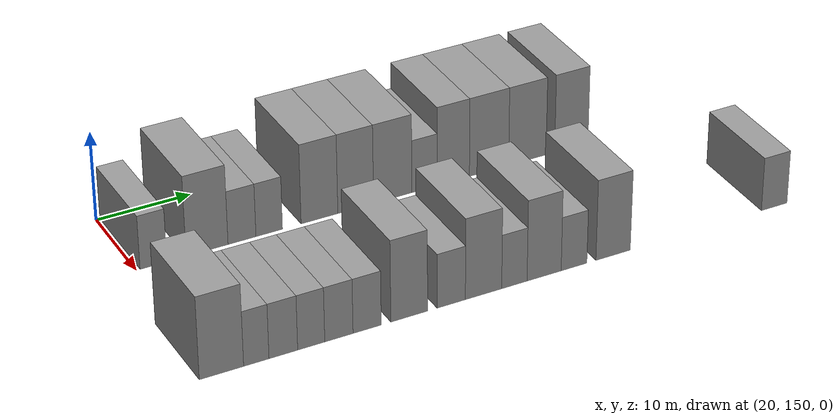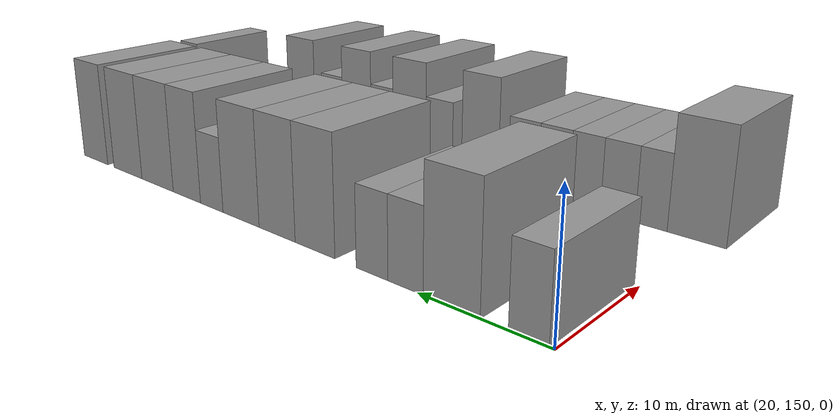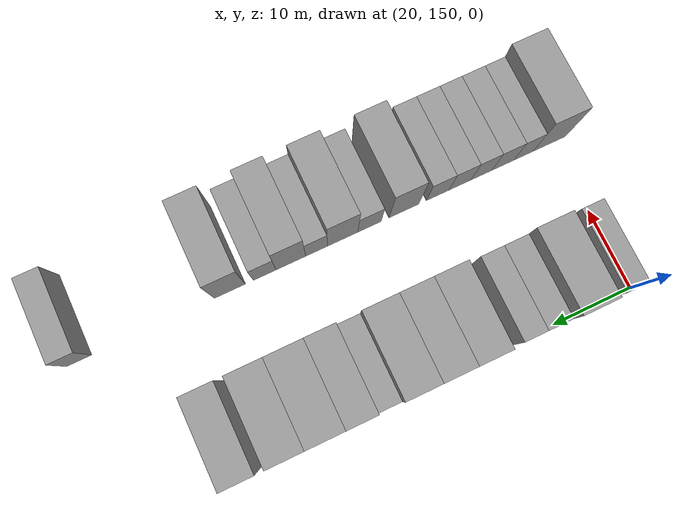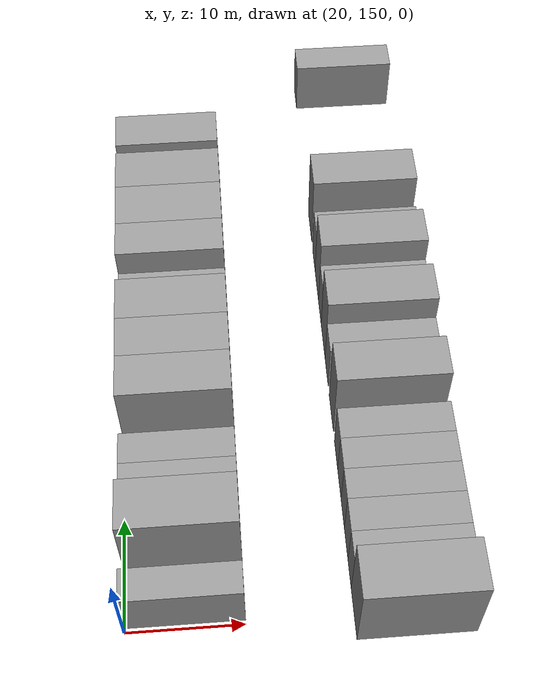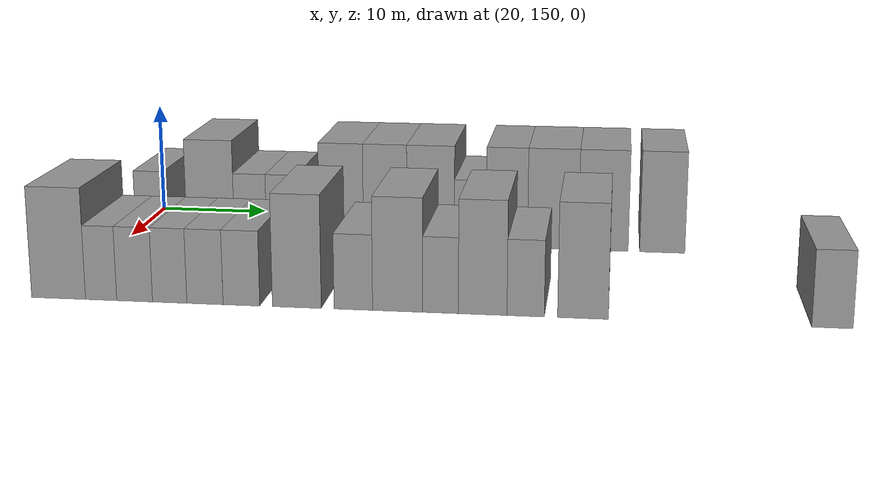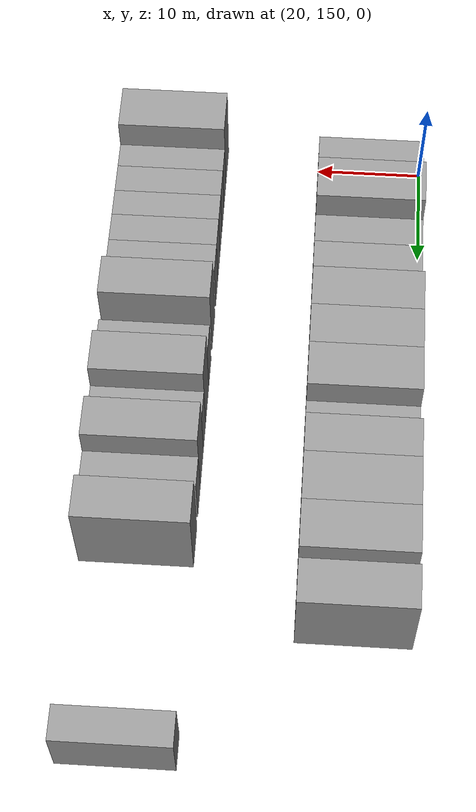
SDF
<sdf version="1.6">
 <world name="default">
  <model name="building_92">
   <static>1</static>
   <pose>25.0000 151.7596 0 0.000000 0.000000 0.000000</pose>
   <link name="link">
    <pose>0 0 3.00 0 0 0</pose>
    <collision name="collision"><geometry><box><size>10.0000 2.7694 6.0000</size></box></geometry></collision>
    <visual name="visual">
     <cast_shadows>0</cast_shadows>
     <geometry><box><size>10.0000 2.7694 6.0000</size></box></geometry>
     <material>
      <script>
       <uri>model://grey_wall/materials/scripts</uri>
       <uri>model://grey_wall/materials/textures</uri>
       <name>vrc/grey_wall</name>
      </script>
     </material>
    </visual>
   </link>
  </model>
  <model name="building_93">
   <static>1</static>
   <pose>25.0000 157.3457 0 0.000000 0.000000 0.000000</pose>
   <link name="link">
    <pose>0 0 4.50 0 0 0</pose>
    <collision name="collision"><geometry><box><size>10.0000 4.4028 9.0000</size></box></geometry></collision>
    <visual name="visual">
     <cast_shadows>0</cast_shadows>
     <geometry><box><size>10.0000 4.4028 9.0000</size></box></geometry>
     <material>
      <script>
       <uri>model://grey_wall/materials/scripts</uri>
       <uri>model://grey_wall/materials/textures</uri>
       <name>vrc/grey_wall</name>
      </script>
     </material>
    </visual>
   </link>
  </model>
  <model name="building_94">
   <static>1</static>
   <pose>25.0000 161.0267 0 0.000000 0.000000 0.000000</pose>
   <link name="link">
    <pose>0 0 3.00 0 0 0</pose>
    <collision name="collision"><geometry><box><size>10.0000 2.9591 6.0000</size></box></geometry></collision>
    <visual name="visual">
     <cast_shadows>0</cast_shadows>
     <geometry><box><size>10.0000 2.9591 6.0000</size></box></geometry>
     <material>
      <script>
       <uri>model://grey_wall/materials/scripts</uri>
       <uri>model://grey_wall/materials/textures</uri>
       <name>vrc/grey_wall</name>
      </script>
     </material>
    </visual>
   </link>
  </model>
  <model name="building_95">
   <static>1</static>
   <pose>25.0000 163.9255 0 0.000000 0.000000 0.000000</pose>
   <link name="link">
    <pose>0 0 3.00 0 0 0</pose>
    <collision name="collision"><geometry><box><size>10.0000 2.8386 6.0000</size></box></geometry></collision>
    <visual name="visual">
     <cast_shadows>0</cast_shadows>
     <geometry><box><size>10.0000 2.8386 6.0000</size></box></geometry>
     <material>
      <script>
       <uri>model://grey_wall/materials/scripts</uri>
       <uri>model://grey_wall/materials/textures</uri>
       <name>vrc/grey_wall</name>
      </script>
     </material>
    </visual>
   </link>
  </model>
  <model name="building_96">
   <static>1</static>
   <pose>25.0000 169.3381 0 0.000000 0.000000 0.000000</pose>
   <link name="link">
    <pose>0 0 4.50 0 0 0</pose>
    <collision name="collision"><geometry><box><size>10.0000 3.9866 9.0000</size></box></geometry></collision>
    <visual name="visual">
     <cast_shadows>0</cast_shadows>
     <geometry><box><size>10.0000 3.9866 9.0000</size></box></geometry>
     <material>
      <script>
       <uri>model://grey_wall/materials/scripts</uri>
       <uri>model://grey_wall/materials/textures</uri>
       <name>vrc/grey_wall</name>
      </script>
     </material>
    </visual>
   </link>
  </model>
  <model name="building_97">
   <static>1</static>
   <pose>25.0000 173.2915 0 0.000000 0.000000 0.000000</pose>
   <link name="link">
    <pose>0 0 4.50 0 0 0</pose>
    <collision name="collision"><geometry><box><size>10.0000 3.9202 9.0000</size></box></geometry></collision>
    <visual name="visual">
     <cast_shadows>0</cast_shadows>
     <geometry><box><size>10.0000 3.9202 9.0000</size></box></geometry>
     <material>
      <script>
       <uri>model://grey_wall/materials/scripts</uri>
       <uri>model://grey_wall/materials/textures</uri>
       <name>vrc/grey_wall</name>
      </script>
     </material>
    </visual>
   </link>
  </model>
  <model name="building_98">
   <static>1</static>
   <pose>25.0000 177.3759 0 0.000000 0.000000 0.000000</pose>
   <link name="link">
    <pose>0 0 4.50 0 0 0</pose>
    <collision name="collision"><geometry><box><size>10.0000 4.2484 9.0000</size></box></geometry></collision>
    <visual name="visual">
     <cast_shadows>0</cast_shadows>
     <geometry><box><size>10.0000 4.2484 9.0000</size></box></geometry>
     <material>
      <script>
       <uri>model://grey_wall/materials/scripts</uri>
       <uri>model://grey_wall/materials/textures</uri>
       <name>vrc/grey_wall</name>
      </script>
     </material>
    </visual>
   </link>
  </model>
  <model name="building_99">
   <static>1</static>
   <pose>25.0000 180.9170 0 0.000000 0.000000 0.000000</pose>
   <link name="link">
    <pose>0 0 3.00 0 0 0</pose>
    <collision name="collision"><geometry><box><size>10.0000 2.8338 6.0000</size></box></geometry></collision>
    <visual name="visual">
     <cast_shadows>0</cast_shadows>
     <geometry><box><size>10.0000 2.8338 6.0000</size></box></geometry>
     <material>
      <script>
       <uri>model://grey_wall/materials/scripts</uri>
       <uri>model://grey_wall/materials/textures</uri>
       <name>vrc/grey_wall</name>
      </script>
     </material>
    </visual>
   </link>
  </model>
  <model name="building_100">
   <static>1</static>
   <pose>25.0000 184.1531 0 0.000000 0.000000 0.000000</pose>
   <link name="link">
    <pose>0 0 4.50 0 0 0</pose>
    <collision name="collision"><geometry><box><size>10.0000 3.6385 9.0000</size></box></geometry></collision>
    <visual name="visual">
     <cast_shadows>0</cast_shadows>
     <geometry><box><size>10.0000 3.6385 9.0000</size></box></geometry>
     <material>
      <script>
       <uri>model://grey_wall/materials/scripts</uri>
       <uri>model://grey_wall/materials/textures</uri>
       <name>vrc/grey_wall</name>
      </script>
     </material>
    </visual>
   </link>
  </model>
  <model name="building_101">
   <static>1</static>
   <pose>25.0000 188.2127 0 0.000000 0.000000 0.000000</pose>
   <link name="link">
    <pose>0 0 4.50 0 0 0</pose>
    <collision name="collision"><geometry><box><size>10.0000 4.4807 9.0000</size></box></geometry></collision>
    <visual name="visual">
     <cast_shadows>0</cast_shadows>
     <geometry><box><size>10.0000 4.4807 9.0000</size></box></geometry>
     <material>
      <script>
       <uri>model://grey_wall/materials/scripts</uri>
       <uri>model://grey_wall/materials/textures</uri>
       <name>vrc/grey_wall</name>
      </script>
     </material>
    </visual>
   </link>
  </model>
  <model name="building_102">
   <static>1</static>
   <pose>25.0000 192.6153 0 0.000000 0.000000 0.000000</pose>
   <link name="link">
    <pose>0 0 4.50 0 0 0</pose>
    <collision name="collision"><geometry><box><size>10.0000 4.3244 9.0000</size></box></geometry></collision>
    <visual name="visual">
     <cast_shadows>0</cast_shadows>
     <geometry><box><size>10.0000 4.3244 9.0000</size></box></geometry>
     <material>
      <script>
       <uri>model://grey_wall/materials/scripts</uri>
       <uri>model://grey_wall/materials/textures</uri>
       <name>vrc/grey_wall</name>
      </script>
     </material>
    </visual>
   </link>
  </model>
  <model name="building_103">
   <static>1</static>
   <pose>25.0000 197.7254 0 0.000000 0.000000 0.000000</pose>
   <link name="link">
    <pose>0 0 4.50 0 0 0</pose>
    <collision name="collision"><geometry><box><size>10.0000 3.8959 9.0000</size></box></geometry></collision>
    <visual name="visual">
     <cast_shadows>0</cast_shadows>
     <geometry><box><size>10.0000 3.8959 9.0000</size></box></geometry>
     <material>
      <script>
       <uri>model://grey_wall/materials/scripts</uri>
       <uri>model://grey_wall/materials/textures</uri>
       <name>vrc/grey_wall</name>
      </script>
     </material>
    </visual>
   </link>
  </model>
  <model name="building_192">
   <static>1</static>
   <pose>44.0000 150.2578 0 0.000000 0.000000 0.000000</pose>
   <link name="link">
    <pose>0 0 4.50 0 0 0</pose>
    <collision name="collision"><geometry><box><size>10.0000 4.3915 9.0000</size></box></geometry></collision>
    <visual name="visual">
     <cast_shadows>0</cast_shadows>
     <geometry><box><size>10.0000 4.3915 9.0000</size></box></geometry>
     <material>
      <script>
       <uri>model://grey_wall/materials/scripts</uri>
       <uri>model://grey_wall/materials/textures</uri>
       <name>vrc/grey_wall</name>
      </script>
     </material>
    </visual>
   </link>
  </model>
  <model name="building_193">
   <static>1</static>
   <pose>44.0000 153.7197 0 0.000000 0.000000 0.000000</pose>
   <link name="link">
    <pose>0 0 3.00 0 0 0</pose>
    <collision name="collision"><geometry><box><size>10.0000 2.5322 6.0000</size></box></geometry></collision>
    <visual name="visual">
     <cast_shadows>0</cast_shadows>
     <geometry><box><size>10.0000 2.5322 6.0000</size></box></geometry>
     <material>
      <script>
       <uri>model://grey_wall/materials/scripts</uri>
       <uri>model://grey_wall/materials/textures</uri>
       <name>vrc/grey_wall</name>
      </script>
     </material>
    </visual>
   </link>
  </model>
  <model name="building_194">
   <static>1</static>
   <pose>44.0000 156.4305 0 0.000000 0.000000 0.000000</pose>
   <link name="link">
    <pose>0 0 3.00 0 0 0</pose>
    <collision name="collision"><geometry><box><size>10.0000 2.8894 6.0000</size></box></geometry></collision>
    <visual name="visual">
     <cast_shadows>0</cast_shadows>
     <geometry><box><size>10.0000 2.8894 6.0000</size></box></geometry>
     <material>
      <script>
       <uri>model://grey_wall/materials/scripts</uri>
       <uri>model://grey_wall/materials/textures</uri>
       <name>vrc/grey_wall</name>
      </script>
     </material>
    </visual>
   </link>
  </model>
  <model name="building_195">
   <static>1</static>
   <pose>44.0000 159.2509 0 0.000000 0.000000 0.000000</pose>
   <link name="link">
    <pose>0 0 3.00 0 0 0</pose>
    <collision name="collision"><geometry><box><size>10.0000 2.7515 6.0000</size></box></geometry></collision>
    <visual name="visual">
     <cast_shadows>0</cast_shadows>
     <geometry><box><size>10.0000 2.7515 6.0000</size></box></geometry>
     <material>
      <script>
       <uri>model://grey_wall/materials/scripts</uri>
       <uri>model://grey_wall/materials/textures</uri>
       <name>vrc/grey_wall</name>
      </script>
     </material>
    </visual>
   </link>
  </model>
  <model name="building_196">
   <static>1</static>
   <pose>44.0000 162.0734 0 0.000000 0.000000 0.000000</pose>
   <link name="link">
    <pose>0 0 3.00 0 0 0</pose>
    <collision name="collision"><geometry><box><size>10.0000 2.8935 6.0000</size></box></geometry></collision>
    <visual name="visual">
     <cast_shadows>0</cast_shadows>
     <geometry><box><size>10.0000 2.8935 6.0000</size></box></geometry>
     <material>
      <script>
       <uri>model://grey_wall/materials/scripts</uri>
       <uri>model://grey_wall/materials/textures</uri>
       <name>vrc/grey_wall</name>
      </script>
     </material>
    </visual>
   </link>
  </model>
  <model name="building_197">
   <static>1</static>
   <pose>44.0000 164.9753 0 0.000000 0.000000 0.000000</pose>
   <link name="link">
    <pose>0 0 3.00 0 0 0</pose>
    <collision name="collision"><geometry><box><size>10.0000 2.9102 6.0000</size></box></geometry></collision>
    <visual name="visual">
     <cast_shadows>0</cast_shadows>
     <geometry><box><size>10.0000 2.9102 6.0000</size></box></geometry>
     <material>
      <script>
       <uri>model://grey_wall/materials/scripts</uri>
       <uri>model://grey_wall/materials/textures</uri>
       <name>vrc/grey_wall</name>
      </script>
     </material>
    </visual>
   </link>
  </model>
  <model name="building_198">
   <static>1</static>
   <pose>44.0000 169.3509 0 0.000000 0.000000 0.000000</pose>
   <link name="link">
    <pose>0 0 4.50 0 0 0</pose>
    <collision name="collision"><geometry><box><size>10.0000 3.8411 9.0000</size></box></geometry></collision>
    <visual name="visual">
     <cast_shadows>0</cast_shadows>
     <geometry><box><size>10.0000 3.8411 9.0000</size></box></geometry>
     <material>
      <script>
       <uri>model://grey_wall/materials/scripts</uri>
       <uri>model://grey_wall/materials/textures</uri>
       <name>vrc/grey_wall</name>
      </script>
     </material>
    </visual>
   </link>
  </model>
  <model name="building_199">
   <static>1</static>
   <pose>44.0000 173.7702 0 0.000000 0.000000 0.000000</pose>
   <link name="link">
    <pose>0 0 3.00 0 0 0</pose>
    <collision name="collision"><geometry><box><size>10.0000 2.9974 6.0000</size></box></geometry></collision>
    <visual name="visual">
     <cast_shadows>0</cast_shadows>
     <geometry><box><size>10.0000 2.9974 6.0000</size></box></geometry>
     <material>
      <script>
       <uri>model://grey_wall/materials/scripts</uri>
       <uri>model://grey_wall/materials/textures</uri>
       <name>vrc/grey_wall</name>
      </script>
     </material>
    </visual>
   </link>
  </model>
  <model name="building_200">
   <static>1</static>
   <pose>44.0000 177.2097 0 0.000000 0.000000 0.000000</pose>
   <link name="link">
    <pose>0 0 4.50 0 0 0</pose>
    <collision name="collision"><geometry><box><size>10.0000 3.8816 9.0000</size></box></geometry></collision>
    <visual name="visual">
     <cast_shadows>0</cast_shadows>
     <geometry><box><size>10.0000 3.8816 9.0000</size></box></geometry>
     <material>
      <script>
       <uri>model://grey_wall/materials/scripts</uri>
       <uri>model://grey_wall/materials/textures</uri>
       <name>vrc/grey_wall</name>
      </script>
     </material>
    </visual>
   </link>
  </model>
  <model name="building_201">
   <static>1</static>
   <pose>44.0000 180.5198 0 0.000000 0.000000 0.000000</pose>
   <link name="link">
    <pose>0 0 3.00 0 0 0</pose>
    <collision name="collision"><geometry><box><size>10.0000 2.7384 6.0000</size></box></geometry></collision>
    <visual name="visual">
     <cast_shadows>0</cast_shadows>
     <geometry><box><size>10.0000 2.7384 6.0000</size></box></geometry>
     <material>
      <script>
       <uri>model://grey_wall/materials/scripts</uri>
       <uri>model://grey_wall/materials/textures</uri>
       <name>vrc/grey_wall</name>
      </script>
     </material>
    </visual>
   </link>
  </model>
  <model name="building_202">
   <static>1</static>
   <pose>44.0000 183.7460 0 0.000000 0.000000 0.000000</pose>
   <link name="link">
    <pose>0 0 4.50 0 0 0</pose>
    <collision name="collision"><geometry><box><size>10.0000 3.7141 9.0000</size></box></geometry></collision>
    <visual name="visual">
     <cast_shadows>0</cast_shadows>
     <geometry><box><size>10.0000 3.7141 9.0000</size></box></geometry>
     <material>
      <script>
       <uri>model://grey_wall/materials/scripts</uri>
       <uri>model://grey_wall/materials/textures</uri>
       <name>vrc/grey_wall</name>
      </script>
     </material>
    </visual>
   </link>
  </model>
  <model name="building_203">
   <static>1</static>
   <pose>44.0000 187.0171 0 0.000000 0.000000 0.000000</pose>
   <link name="link">
    <pose>0 0 3.00 0 0 0</pose>
    <collision name="collision"><geometry><box><size>10.0000 2.8280 6.0000</size></box></geometry></collision>
    <visual name="visual">
     <cast_shadows>0</cast_shadows>
     <geometry><box><size>10.0000 2.8280 6.0000</size></box></geometry>
     <material>
      <script>
       <uri>model://grey_wall/materials/scripts</uri>
       <uri>model://grey_wall/materials/textures</uri>
       <name>vrc/grey_wall</name>
      </script>
     </material>
    </visual>
   </link>
  </model>
  <model name="building_204">
   <static>1</static>
   <pose>44.0000 191.3404 0 0.000000 0.000000 0.000000</pose>
   <link name="link">
    <pose>0 0 4.50 0 0 0</pose>
    <collision name="collision"><geometry><box><size>10.0000 3.8188 9.0000</size></box></geometry></collision>
    <visual name="visual">
     <cast_shadows>0</cast_shadows>
     <geometry><box><size>10.0000 3.8188 9.0000</size></box></geometry>
     <material>
      <script>
       <uri>model://grey_wall/materials/scripts</uri>
       <uri>model://grey_wall/materials/textures</uri>
       <name>vrc/grey_wall</name>
      </script>
     </material>
    </visual>
   </link>
  </model>
  <model name="building_205">
   <static>1</static>
   <pose>44.0000 209.7336 0 0.000000 0.000000 0.000000</pose>
   <link name="link">
    <pose>0 0 3.00 0 0 0</pose>
    <collision name="collision"><geometry><box><size>10.0000 2.9891 6.0000</size></box></geometry></collision>
    <visual name="visual">
     <cast_shadows>0</cast_shadows>
     <geometry><box><size>10.0000 2.9891 6.0000</size></box></geometry>
     <material>
      <script>
       <uri>model://grey_wall/materials/scripts</uri>
       <uri>model://grey_wall/materials/textures</uri>
       <name>vrc/grey_wall</name>
      </script>
     </material>
    </visual>
   </link>
  </model>
 </world>
</sdf>
